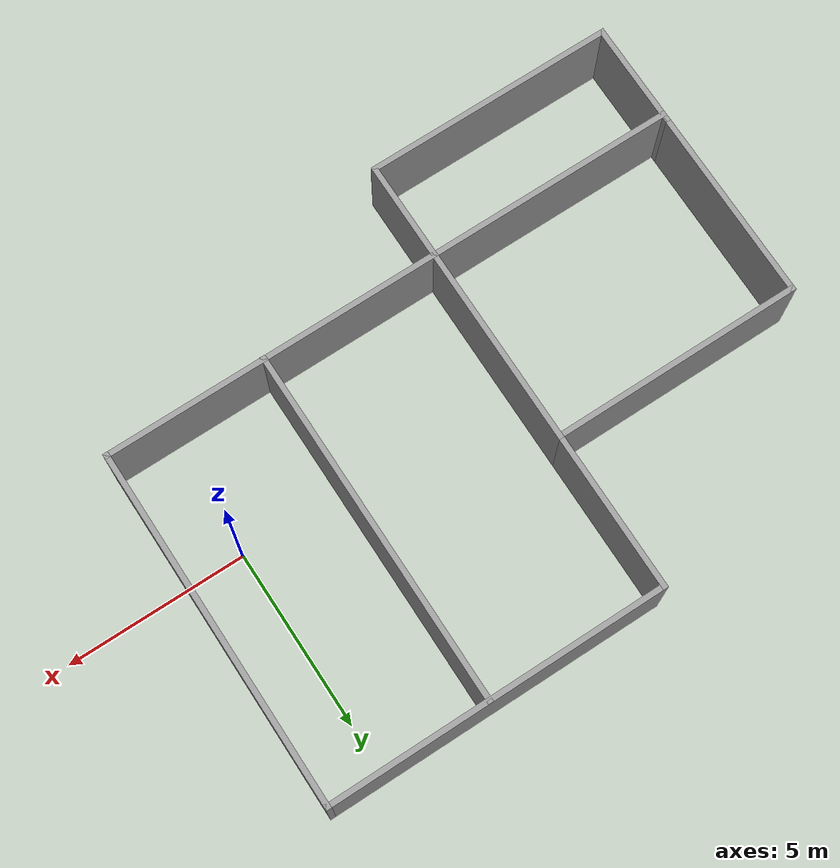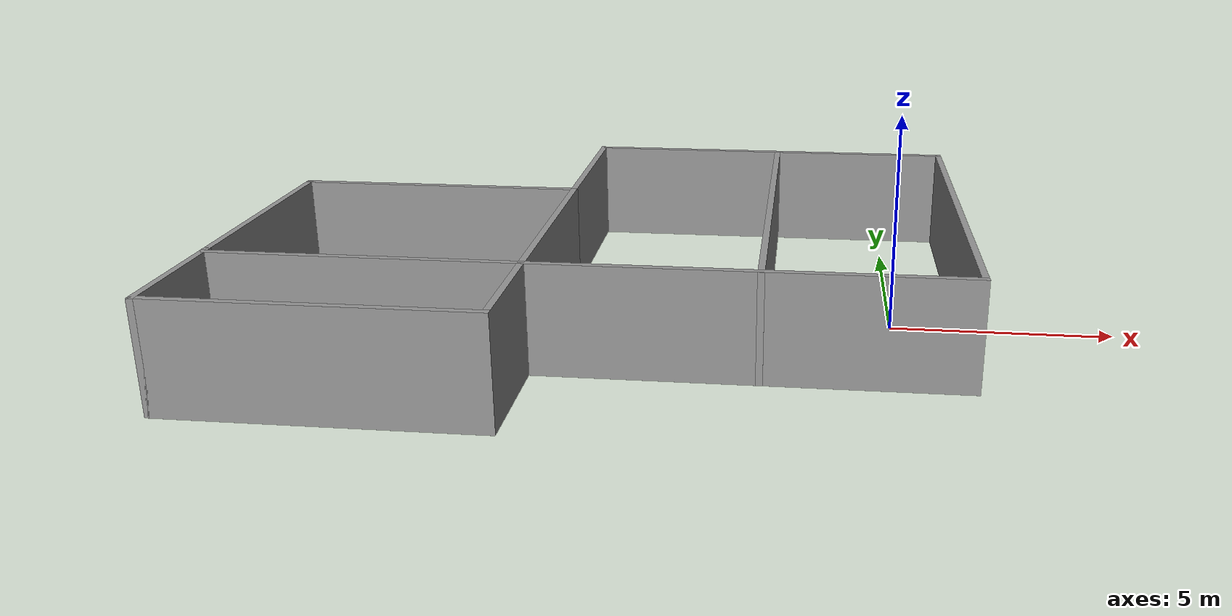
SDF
<?xml version='1.0'?>
<sdf version='1.7'>
  <model name='my_building'>
    <pose>-6.55 0.265 0 0 -0 0</pose>
    <link name='Wall_0'>
      <collision name='Wall_0_Collision'>
        <geometry>
          <box>
            <size>9.5 0.15 2.5</size>
          </box>
        </geometry>
        <pose>0 0 1.25 0 -0 0</pose>
      </collision>
      <visual name='Wall_0_Visual'>
        <pose>0 0 1.25 0 -0 0</pose>
        <geometry>
          <box>
            <size>9.5 0.15 2.5</size>
          </box>
        </geometry>
        <material>
          <script>
            <uri>file://media/materials/scripts/gazebo.material</uri>
            <name>Gazebo/Grey</name>
          </script>
          <ambient>1 1 1 1</ambient>
        </material>
        <meta>
          <layer>0</layer>
        </meta>
      </visual>
      <pose>3.425 -3.575 0 0 -0 3.14159</pose>
    </link>
    <link name='Wall_10'>
      <collision name='Wall_10_Collision'>
        <geometry>
          <box>
            <size>7 0.15 2.5</size>
          </box>
        </geometry>
        <pose>0 0 1.25 0 -0 0</pose>
      </collision>
      <visual name='Wall_10_Visual'>
        <pose>0 0 1.25 0 -0 0</pose>
        <geometry>
          <box>
            <size>7 0.15 2.5</size>
          </box>
        </geometry>
        <material>
          <script>
            <uri>file://media/materials/scripts/gazebo.material</uri>
            <name>Gazebo/Grey</name>
          </script>
          <ambient>1 1 1 1</ambient>
        </material>
        <meta>
          <layer>0</layer>
        </meta>
      </visual>
      <pose>-4.675 -6.275 0 0 -0 0</pose>
    </link>
    <link name='Wall_11'>
      <collision name='Wall_11_Collision'>
        <geometry>
          <box>
            <size>2.85 0.15 2.5</size>
          </box>
        </geometry>
        <pose>0 0 1.25 0 -0 0</pose>
      </collision>
      <visual name='Wall_11_Visual'>
        <pose>0 0 1.25 0 -0 0</pose>
        <geometry>
          <box>
            <size>2.85 0.15 2.5</size>
          </box>
        </geometry>
        <material>
          <script>
            <uri>file://media/materials/scripts/gazebo.material</uri>
            <name>Gazebo/Grey</name>
          </script>
          <ambient>1 1 1 1</ambient>
        </material>
        <meta>
          <layer>0</layer>
        </meta>
      </visual>
      <pose>-1.25 -4.925 0 0 -0 1.5708</pose>
    </link>
    <link name='Wall_13'>
      <collision name='Wall_13_Collision'>
        <geometry>
          <box>
            <size>7 0.15 2.5</size>
          </box>
        </geometry>
        <pose>0 0 1.25 0 -0 0</pose>
      </collision>
      <visual name='Wall_13_Visual'>
        <pose>0 0 1.25 0 -0 0</pose>
        <geometry>
          <box>
            <size>7 0.15 2.5</size>
          </box>
        </geometry>
        <material>
          <script>
            <uri>file://media/materials/scripts/gazebo.material</uri>
            <name>Gazebo/Grey</name>
          </script>
          <ambient>1 1 1 1</ambient>
        </material>
        <meta>
          <layer>0</layer>
        </meta>
      </visual>
      <pose>-4.675 -3.575 0 0 -0 3.14159</pose>
    </link>
    <link name='Wall_15'>
      <collision name='Wall_15_Collision'>
        <geometry>
          <box>
            <size>5.65 0.15 2.5</size>
          </box>
        </geometry>
        <pose>0 0 1.25 0 -0 0</pose>
      </collision>
      <visual name='Wall_15_Visual'>
        <pose>0 0 1.25 0 -0 0</pose>
        <geometry>
          <box>
            <size>5.65 0.15 2.5</size>
          </box>
        </geometry>
        <material>
          <script>
            <uri>file://media/materials/scripts/gazebo.material</uri>
            <name>Gazebo/Grey</name>
          </script>
          <ambient>1 1 1 1</ambient>
        </material>
        <meta>
          <layer>0</layer>
        </meta>
      </visual>
      <pose>-1.25 -0.825 0 0 -0 -1.5708</pose>
    </link>
    <link name='Wall_17'>
      <collision name='Wall_17_Collision'>
        <geometry>
          <box>
            <size>10 0.15 2.5</size>
          </box>
        </geometry>
        <pose>0 0 1.25 0 -0 0</pose>
      </collision>
      <visual name='Wall_17_Visual'>
        <pose>0 0 1.25 0 -0 0</pose>
        <geometry>
          <box>
            <size>10 0.15 2.5</size>
          </box>
        </geometry>
        <material>
          <script>
            <uri>file://media/materials/scripts/gazebo.material</uri>
            <name>Gazebo/Grey</name>
          </script>
          <ambient>1 1 1 1</ambient>
        </material>
        <meta>
          <layer>0</layer>
        </meta>
      </visual>
      <pose>3.67142 1.34122 0 0 -0 -1.5708</pose>
    </link>
    <link name='Wall_2'>
      <collision name='Wall_2_Collision'>
        <geometry>
          <box>
            <size>10 0.15 2.5</size>
          </box>
        </geometry>
        <pose>0 0 1.25 0 -0 0</pose>
      </collision>
      <visual name='Wall_2_Visual'>
        <pose>0 0 1.25 0 -0 0</pose>
        <geometry>
          <box>
            <size>10 0.15 2.5</size>
          </box>
        </geometry>
        <material>
          <script>
            <uri>file://media/materials/scripts/gazebo.material</uri>
            <name>Gazebo/Grey</name>
          </script>
          <ambient>1 1 1 1</ambient>
        </material>
        <meta>
          <layer>0</layer>
        </meta>
      </visual>
      <pose>8.1 1.35 0 0 -0 1.5708</pose>
    </link>
    <link name='Wall_4'>
      <collision name='Wall_4_Collision'>
        <geometry>
          <box>
            <size>9.5 0.15 2.5</size>
          </box>
        </geometry>
        <pose>0 0 1.25 0 -0 0</pose>
      </collision>
      <visual name='Wall_4_Visual'>
        <pose>0 0 1.25 0 -0 0</pose>
        <geometry>
          <box>
            <size>9.5 0.15 2.5</size>
          </box>
        </geometry>
        <material>
          <script>
            <uri>file://media/materials/scripts/gazebo.material</uri>
            <name>Gazebo/Grey</name>
          </script>
          <ambient>1 1 1 1</ambient>
        </material>
        <meta>
          <layer>0</layer>
        </meta>
      </visual>
      <pose>3.425 6.275 0 0 -0 3.14159</pose>
    </link>
    <link name='Wall_6'>
      <collision name='Wall_6_Collision'>
        <geometry>
          <box>
            <size>4.5 0.15 2.5</size>
          </box>
        </geometry>
        <pose>0 0 1.25 0 -0 0</pose>
      </collision>
      <visual name='Wall_6_Visual'>
        <pose>0 0 1.25 0 -0 0</pose>
        <geometry>
          <box>
            <size>4.5 0.15 2.5</size>
          </box>
        </geometry>
        <material>
          <script>
            <uri>file://media/materials/scripts/gazebo.material</uri>
            <name>Gazebo/Grey</name>
          </script>
          <ambient>1 1 1 1</ambient>
        </material>
        <meta>
          <layer>0</layer>
        </meta>
      </visual>
      <pose>-1.25 4.1 0 0 -0 -1.5708</pose>
    </link>
    <link name='Wall_7'>
      <collision name='Wall_7_Collision'>
        <geometry>
          <box>
            <size>7 0.15 2.5</size>
          </box>
        </geometry>
        <pose>0 0 1.25 0 -0 0</pose>
      </collision>
      <visual name='Wall_7_Visual'>
        <pose>0 0 1.25 0 -0 0</pose>
        <geometry>
          <box>
            <size>7 0.15 2.5</size>
          </box>
        </geometry>
        <material>
          <script>
            <uri>file://media/materials/scripts/gazebo.material</uri>
            <name>Gazebo/Grey</name>
          </script>
          <ambient>1 1 1 1</ambient>
        </material>
        <meta>
          <layer>0</layer>
        </meta>
      </visual>
      <pose>-4.675 1.925 0 0 -0 3.14159</pose>
    </link>
    <link name='Wall_8'>
      <collision name='Wall_8_Collision'>
        <geometry>
          <box>
            <size>5.5 0.15 2.5</size>
          </box>
        </geometry>
        <pose>0 0 1.25 0 -0 0</pose>
      </collision>
      <visual name='Wall_8_Visual'>
        <pose>0 0 1.25 0 -0 0</pose>
        <geometry>
          <box>
            <size>5.5 0.15 2.5</size>
          </box>
        </geometry>
        <material>
          <script>
            <uri>file://media/materials/scripts/gazebo.material</uri>
            <name>Gazebo/Grey</name>
          </script>
          <ambient>1 1 1 1</ambient>
        </material>
        <meta>
          <layer>0</layer>
        </meta>
      </visual>
      <pose>-8.1 -0.75 0 0 -0 -1.5708</pose>
    </link>
    <link name='Wall_9'>
      <collision name='Wall_9_Collision'>
        <geometry>
          <box>
            <size>3 0.15 2.5</size>
          </box>
        </geometry>
        <pose>0 0 1.25 0 -0 0</pose>
      </collision>
      <visual name='Wall_9_Visual'>
        <pose>0 0 1.25 0 -0 0</pose>
        <geometry>
          <box>
            <size>3 0.15 2.5</size>
          </box>
        </geometry>
        <material>
          <script>
            <uri>file://media/materials/scripts/gazebo.material</uri>
            <name>Gazebo/Grey</name>
          </script>
          <ambient>1 1 1 1</ambient>
        </material>
        <meta>
          <layer>0</layer>
        </meta>
      </visual>
      <pose>-8.1 -4.85 0 0 -0 -1.5708</pose>
    </link>
    <static>1</static>
  </model>
</sdf>
